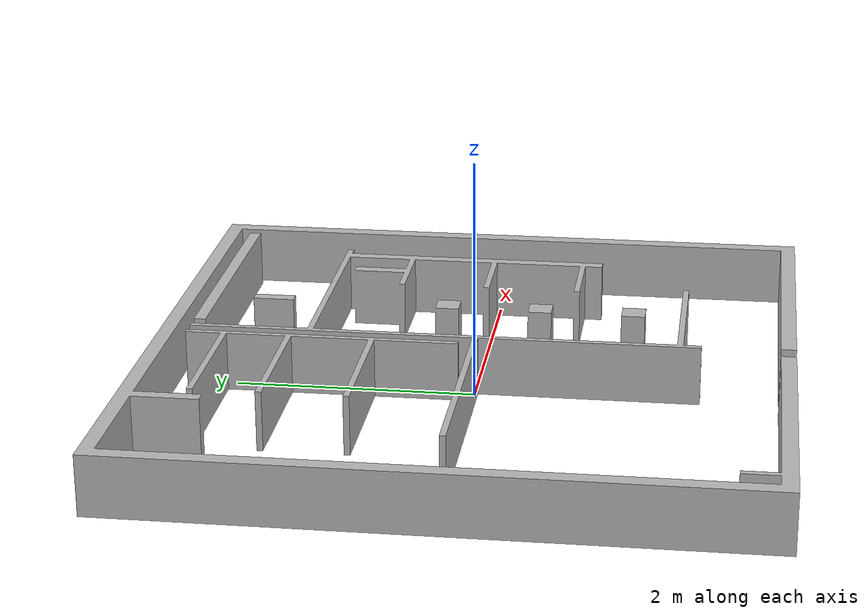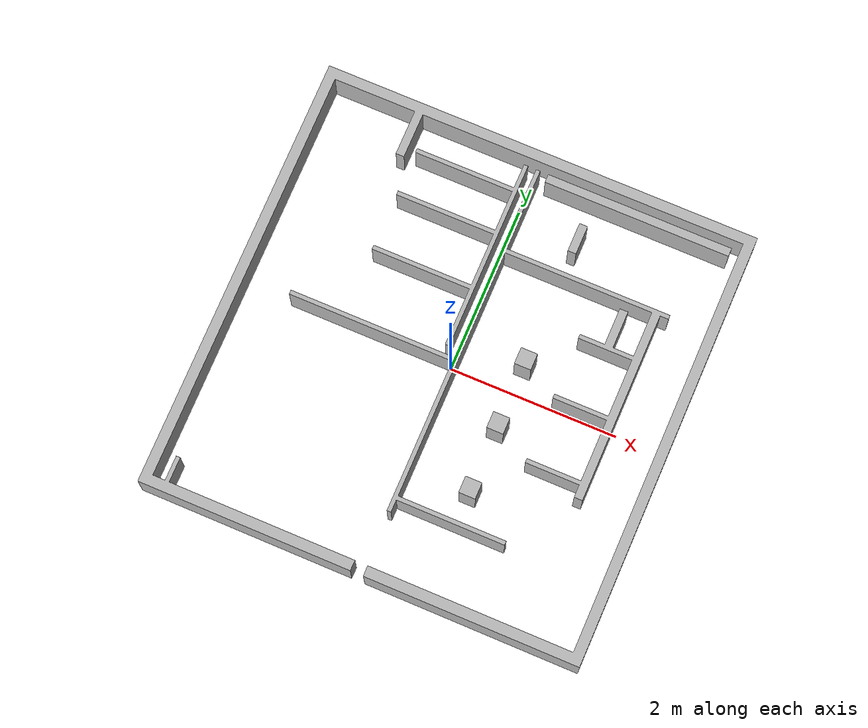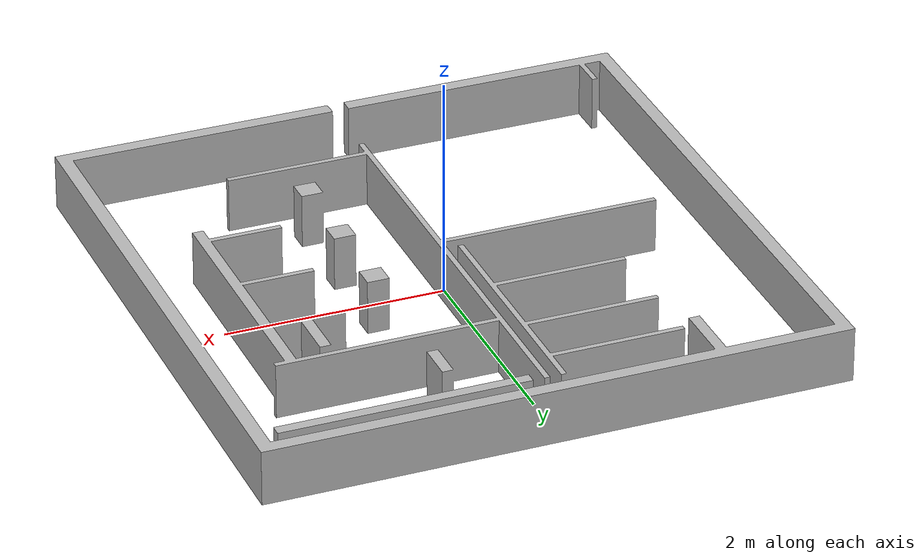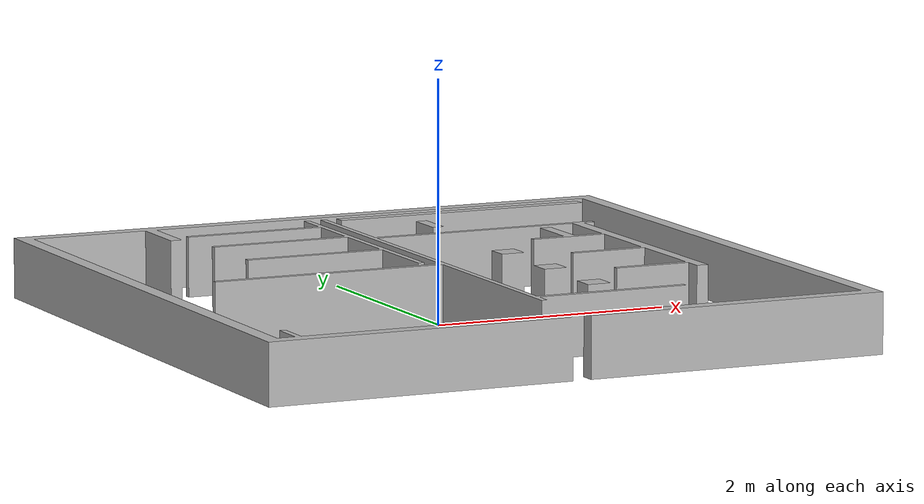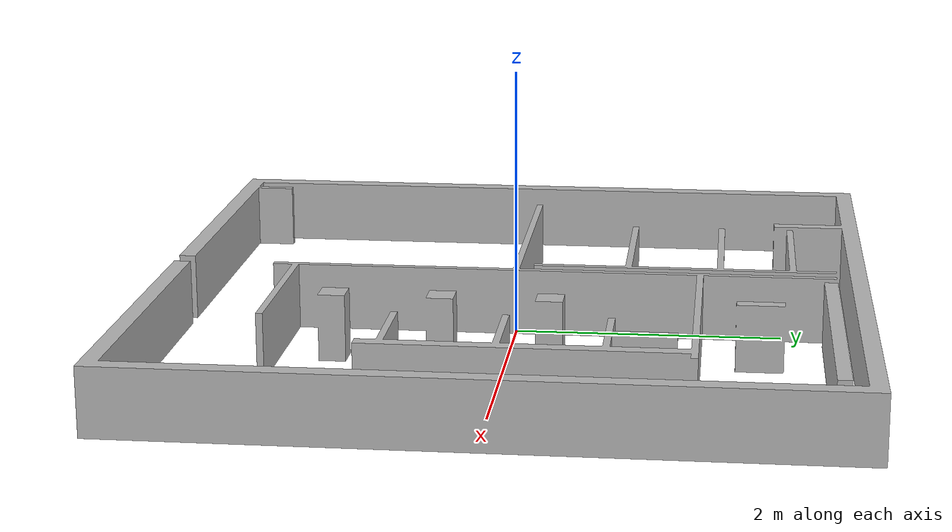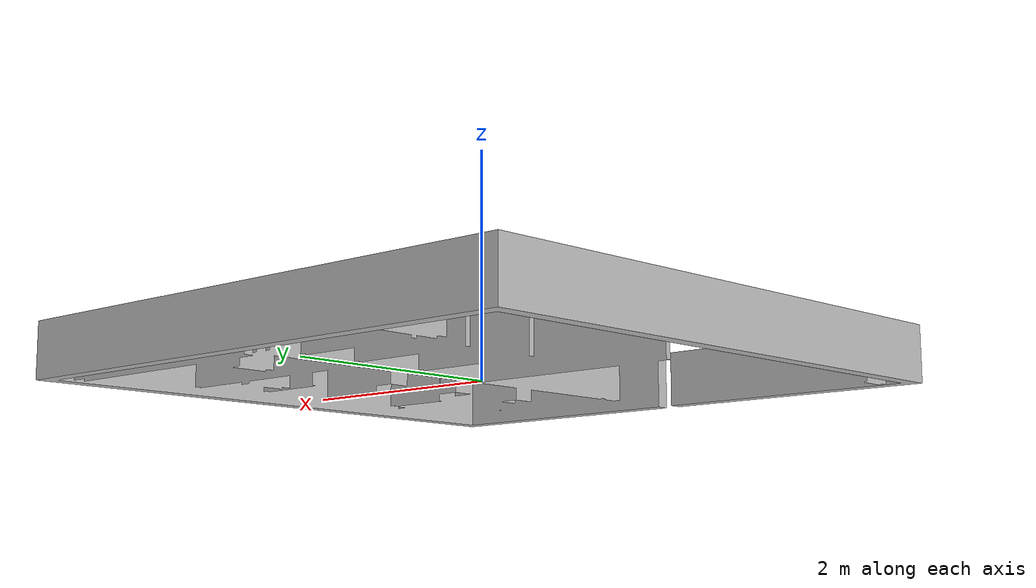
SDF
<?xml version='1.0'?>
<sdf version='1.6'>
  <model name='walls'>
    <link name='link_1'>
         <visual name='visual'>
        <pose frame=''>0 0 0 0 -0 0</pose>
        <geometry>
          <mesh>
            <uri>model://walls/meshes/walls.dae</uri>
            <scale>0.025 0.025 0.025</scale>
          </mesh>
        </geometry>
        <cast_shadows>0</cast_shadows>
        <transparency>0</transparency>
      </visual>
      <collision name='collision'>
        <laser_retro>0</laser_retro>
        <max_contacts>10</max_contacts>
        <pose frame=''>0 0 0 0 -0 0</pose>
        <geometry>
          <mesh>
            <uri>model://walls/meshes/walls.stl</uri>
            <scale>0.025 0.025 0.025</scale>
          </mesh>
        </geometry>
     </collision>
    </link>

    <static>1</static>
    <allow_auto_disable>1</allow_auto_disable>
  </model>
</sdf>
